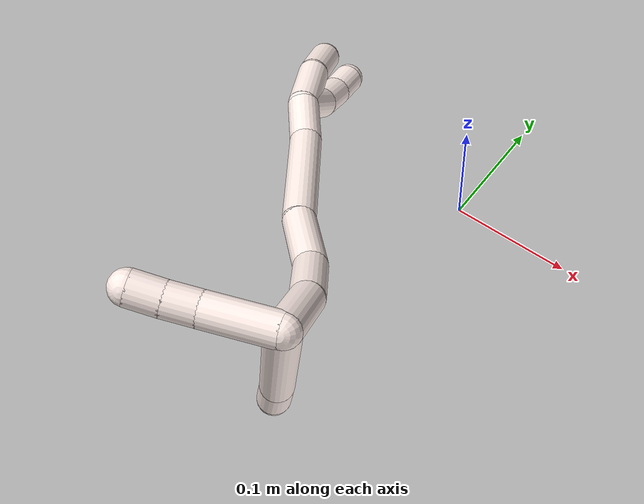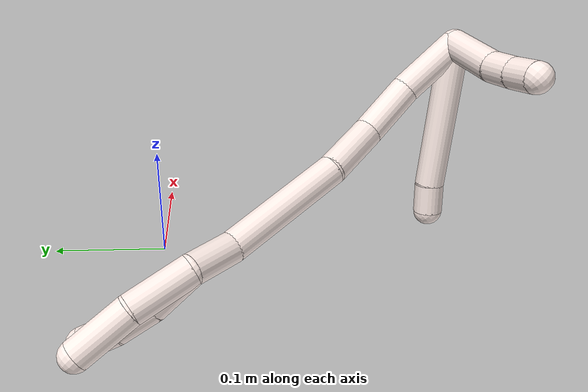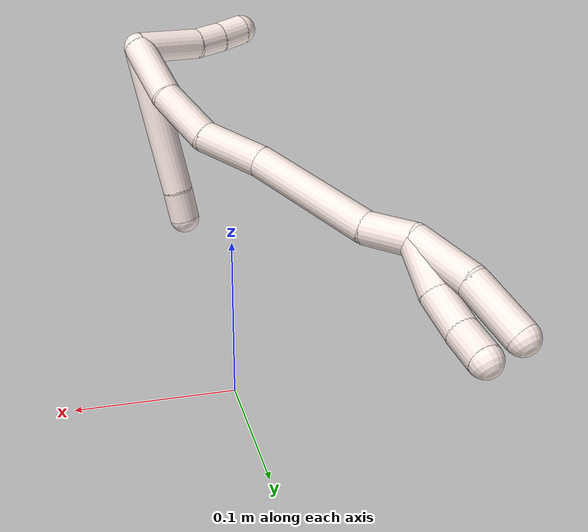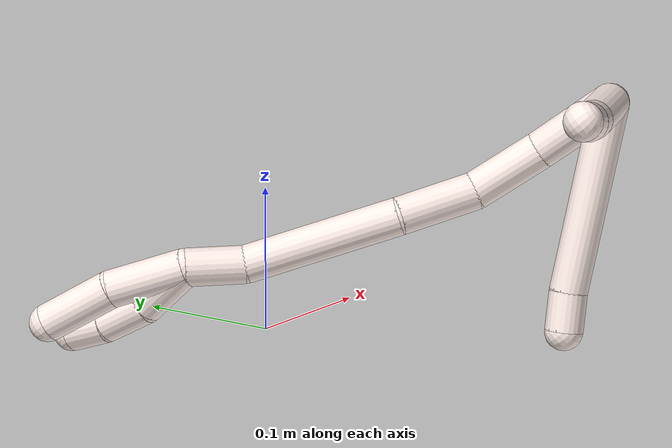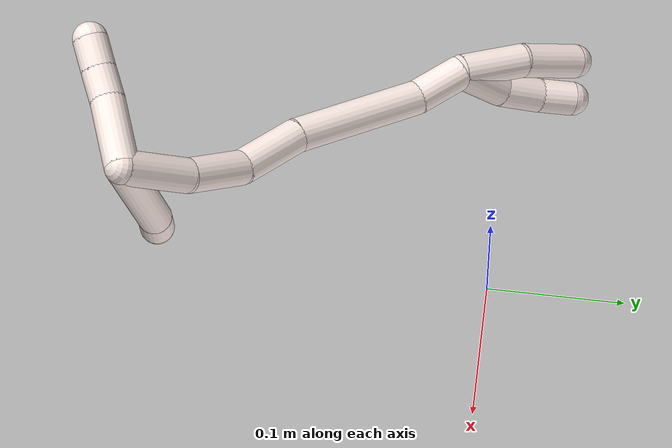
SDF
<sdf version="1.7">
 <world name="default">
  <model name="11">
   <static>0</static>
   <link name="11">
    <collision name="collision-cylinder-e_1_2_8">
     <pose>-0.007183 -0.039432 -0.04749 2.44863 -0.11585 -0.318513</pose>
     <geometry><cylinder><radius>0.0125</radius><length>0.124287</length></cylinder></geometry>
     <surface>
      <friction><ode><mu>1.16</mu><mu2>1.16</mu2><slip1>0</slip1><slip2>0</slip2></ode></friction>
      <contact><ode><kp>1e+06</kp><kd>1</kd><max_vel>0</max_vel><min_depth>0.001</min_depth></ode></contact>
     </surface>
    </collision>
    <visual name="visual-cylinder-e_1_2_8">
     <pose>-0.007183 -0.039432 -0.04749 2.44863 -0.11585 -0.318513</pose>
     <geometry><cylinder><radius>0.0125</radius><length>0.124287</length></cylinder></geometry>
     <material><ambient>1 0.933333 0.909804 1</ambient></material>
    </visual>
    <collision name="collision-cylinder-e_2_8_6">
     <pose>-0.016135 -0.088006 -0.103846 2.34088 -0.137976 -0.323681</pose>
     <geometry><cylinder><radius>0.0125</radius><length>0.025713</length></cylinder></geometry>
     <surface>
      <friction><ode><mu>1.16</mu><mu2>1.16</mu2><slip1>0</slip1><slip2>0</slip2></ode></friction>
      <contact><ode><kp>1e+06</kp><kd>1</kd><max_vel>0</max_vel><min_depth>0.001</min_depth></ode></contact>
     </surface>
    </collision>
    <visual name="visual-cylinder-e_2_8_6">
     <pose>-0.016135 -0.088006 -0.103846 2.34088 -0.137976 -0.323681</pose>
     <geometry><cylinder><radius>0.0125</radius><length>0.025713</length></cylinder></geometry>
     <material><ambient>1 0.933333 0.909804 1</ambient></material>
    </visual>
    <collision name="collision-cylinder-e_1_2_9">
     <pose>-0.026571 -0.001319 -0.000695 2.0558 -1.51474 -2.00556</pose>
     <geometry><cylinder><radius>0.0125</radius><length>0.053226</length></cylinder></geometry>
     <surface>
      <friction><ode><mu>1.16</mu><mu2>1.16</mu2><slip1>0</slip1><slip2>0</slip2></ode></friction>
      <contact><ode><kp>1e+06</kp><kd>1</kd><max_vel>0</max_vel><min_depth>0.001</min_depth></ode></contact>
     </surface>
    </collision>
    <visual name="visual-cylinder-e_1_2_9">
     <pose>-0.026571 -0.001319 -0.000695 2.0558 -1.51474 -2.00556</pose>
     <geometry><cylinder><radius>0.0125</radius><length>0.053226</length></cylinder></geometry>
     <material><ambient>1 0.933333 0.909804 1</ambient></material>
    </visual>
    <collision name="collision-cylinder-e_2_9_10">
     <pose>-0.064785 -0.002391 0.000172 -0.15666 -1.43579 0.136885</pose>
     <geometry><cylinder><radius>0.0125</radius><length>0.0235</length></cylinder></geometry>
     <surface>
      <friction><ode><mu>1.16</mu><mu2>1.16</mu2><slip1>0</slip1><slip2>0</slip2></ode></friction>
      <contact><ode><kp>1e+06</kp><kd>1</kd><max_vel>0</max_vel><min_depth>0.001</min_depth></ode></contact>
     </surface>
    </collision>
    <visual name="visual-cylinder-e_2_9_10">
     <pose>-0.064785 -0.002391 0.000172 -0.15666 -1.43579 0.136885</pose>
     <geometry><cylinder><radius>0.0125</radius><length>0.0235</length></cylinder></geometry>
     <material><ambient>1 0.933333 0.909804 1</ambient></material>
    </visual>
    <collision name="collision-cylinder-e_3_10_5">
     <pose>-0.087872 -0.001243 0.003644 -0.440921 -1.38831 0.368823</pose>
     <geometry><cylinder><radius>0.0125</radius><length>0.023274</length></cylinder></geometry>
     <surface>
      <friction><ode><mu>1.16</mu><mu2>1.16</mu2><slip1>0</slip1><slip2>0</slip2></ode></friction>
      <contact><ode><kp>1e+06</kp><kd>1</kd><max_vel>0</max_vel><min_depth>0.001</min_depth></ode></contact>
     </surface>
    </collision>
    <visual name="visual-cylinder-e_3_10_5">
     <pose>-0.087872 -0.001243 0.003644 -0.440921 -1.38831 0.368823</pose>
     <geometry><cylinder><radius>0.0125</radius><length>0.023274</length></cylinder></geometry>
     <material><ambient>1 0.933333 0.909804 1</ambient></material>
    </visual>
    <collision name="collision-cylinder-e_1_2_11">
     <pose>-0.000243 0.001948 -0.027846 -3.07176 -0.008705 0.247926</pose>
     <geometry><cylinder><radius>0.0125</radius><length>0.055831</length></cylinder></geometry>
     <surface>
      <friction><ode><mu>1.16</mu><mu2>1.16</mu2><slip1>0</slip1><slip2>0</slip2></ode></friction>
      <contact><ode><kp>1e+06</kp><kd>1</kd><max_vel>0</max_vel><min_depth>0.001</min_depth></ode></contact>
     </surface>
    </collision>
    <visual name="visual-cylinder-e_1_2_11">
     <pose>-0.000243 0.001948 -0.027846 -3.07176 -0.008705 0.247926</pose>
     <geometry><cylinder><radius>0.0125</radius><length>0.055831</length></cylinder></geometry>
     <material><ambient>1 0.933333 0.909804 1</ambient></material>
    </visual>
    <collision name="collision-cylinder-e_2_11_12">
     <pose>-0.006296 0.006491 -0.079593 -3.03343 -0.237141 2.28859</pose>
     <geometry><cylinder><radius>0.0125</radius><length>0.049466</length></cylinder></geometry>
     <surface>
      <friction><ode><mu>1.16</mu><mu2>1.16</mu2><slip1>0</slip1><slip2>0</slip2></ode></friction>
      <contact><ode><kp>1e+06</kp><kd>1</kd><max_vel>0</max_vel><min_depth>0.001</min_depth></ode></contact>
     </surface>
    </collision>
    <visual name="visual-cylinder-e_2_11_12">
     <pose>-0.006296 0.006491 -0.079593 -3.03343 -0.237141 2.28859</pose>
     <geometry><cylinder><radius>0.0125</radius><length>0.049466</length></cylinder></geometry>
     <material><ambient>1 0.933333 0.909804 1</ambient></material>
    </visual>
    <collision name="collision-cylinder-e_3_12_13">
     <pose>-0.024156 0.017562 -0.125044 -2.76687 -0.479788 1.82289</pose>
     <geometry><cylinder><radius>0.0125</radius><length>0.052209</length></cylinder></geometry>
     <surface>
      <friction><ode><mu>1.16</mu><mu2>1.16</mu2><slip1>0</slip1><slip2>0</slip2></ode></friction>
      <contact><ode><kp>1e+06</kp><kd>1</kd><max_vel>0</max_vel><min_depth>0.001</min_depth></ode></contact>
     </surface>
    </collision>
    <visual name="visual-cylinder-e_3_12_13">
     <pose>-0.024156 0.017562 -0.125044 -2.76687 -0.479788 1.82289</pose>
     <geometry><cylinder><radius>0.0125</radius><length>0.052209</length></cylinder></geometry>
     <material><ambient>1 0.933333 0.909804 1</ambient></material>
    </visual>
    <collision name="collision-cylinder-e_4_13_14">
     <pose>-0.050405 0.044233 -0.192903 -2.76721 -0.277979 1.27229</pose>
     <geometry><cylinder><radius>0.0125</radius><length>0.103483</length></cylinder></geometry>
     <surface>
      <friction><ode><mu>1.16</mu><mu2>1.16</mu2><slip1>0</slip1><slip2>0</slip2></ode></friction>
      <contact><ode><kp>1e+06</kp><kd>1</kd><max_vel>0</max_vel><min_depth>0.001</min_depth></ode></contact>
     </surface>
    </collision>
    <visual name="visual-cylinder-e_4_13_14">
     <pose>-0.050405 0.044233 -0.192903 -2.76721 -0.277979 1.27229</pose>
     <geometry><cylinder><radius>0.0125</radius><length>0.103483</length></cylinder></geometry>
     <material><ambient>1 0.933333 0.909804 1</ambient></material>
    </visual>
    <collision name="collision-cylinder-e_5_14_1">
     <pose>-0.071977 0.073568 -0.253424 -2.4768 -0.387703 1.03418</pose>
     <geometry><cylinder><radius>0.0125</radius><length>0.03901</length></cylinder></geometry>
     <surface>
      <friction><ode><mu>1.16</mu><mu2>1.16</mu2><slip1>0</slip1><slip2>0</slip2></ode></friction>
      <contact><ode><kp>1e+06</kp><kd>1</kd><max_vel>0</max_vel><min_depth>0.001</min_depth></ode></contact>
     </surface>
    </collision>
    <visual name="visual-cylinder-e_5_14_1">
     <pose>-0.071977 0.073568 -0.253424 -2.4768 -0.387703 1.03418</pose>
     <geometry><cylinder><radius>0.0125</radius><length>0.03901</length></cylinder></geometry>
     <material><ambient>1 0.933333 0.909804 1</ambient></material>
    </visual>
    <collision name="collision-cylinder-e_1_1_15">
     <pose>-0.076318 0.08355 -0.287939 3.08465 0.148081 2.40838</pose>
     <geometry><cylinder><radius>0.0125</radius><length>0.041122</length></cylinder></geometry>
     <surface>
      <friction><ode><mu>1.16</mu><mu2>1.16</mu2><slip1>0</slip1><slip2>0</slip2></ode></friction>
      <contact><ode><kp>1e+06</kp><kd>1</kd><max_vel>0</max_vel><min_depth>0.001</min_depth></ode></contact>
     </surface>
    </collision>
    <visual name="visual-cylinder-e_1_1_15">
     <pose>-0.076318 0.08355 -0.287939 3.08465 0.148081 2.40838</pose>
     <geometry><cylinder><radius>0.0125</radius><length>0.041122</length></cylinder></geometry>
     <material><ambient>1 0.933333 0.909804 1</ambient></material>
    </visual>
    <collision name="collision-cylinder-e_2_15_16">
     <pose>-0.071846 0.085818 -0.324053 -2.92826 0.088679 -0.785671</pose>
     <geometry><cylinder><radius>0.0125</radius><length>0.032483</length></cylinder></geometry>
     <surface>
      <friction><ode><mu>1.16</mu><mu2>1.16</mu2><slip1>0</slip1><slip2>0</slip2></ode></friction>
      <contact><ode><kp>1e+06</kp><kd>1</kd><max_vel>0</max_vel><min_depth>0.001</min_depth></ode></contact>
     </surface>
    </collision>
    <visual name="visual-cylinder-e_2_15_16">
     <pose>-0.071846 0.085818 -0.324053 -2.92826 0.088679 -0.785671</pose>
     <geometry><cylinder><radius>0.0125</radius><length>0.032483</length></cylinder></geometry>
     <material><ambient>1 0.933333 0.909804 1</ambient></material>
    </visual>
    <collision name="collision-cylinder-e_3_16_4">
     <pose>-0.068656 0.09419 -0.351973 -2.75377 0.133134 -0.654524</pose>
     <geometry><cylinder><radius>0.0125</radius><length>0.026395</length></cylinder></geometry>
     <surface>
      <friction><ode><mu>1.16</mu><mu2>1.16</mu2><slip1>0</slip1><slip2>0</slip2></ode></friction>
      <contact><ode><kp>1e+06</kp><kd>1</kd><max_vel>0</max_vel><min_depth>0.001</min_depth></ode></contact>
     </surface>
    </collision>
    <visual name="visual-cylinder-e_3_16_4">
     <pose>-0.068656 0.09419 -0.351973 -2.75377 0.133134 -0.654524</pose>
     <geometry><cylinder><radius>0.0125</radius><length>0.026395</length></cylinder></geometry>
     <material><ambient>1 0.933333 0.909804 1</ambient></material>
    </visual>
    <collision name="collision-cylinder-e_1_1_17">
     <pose>-0.083455 0.094145 -0.291136 -2.75973 -0.160633 0.789184</pose>
     <geometry><cylinder><radius>0.0125</radius><length>0.051307</length></cylinder></geometry>
     <surface>
      <friction><ode><mu>1.16</mu><mu2>1.16</mu2><slip1>0</slip1><slip2>0</slip2></ode></friction>
      <contact><ode><kp>1e+06</kp><kd>1</kd><max_vel>0</max_vel><min_depth>0.001</min_depth></ode></contact>
     </surface>
    </collision>
    <visual name="visual-cylinder-e_1_1_17">
     <pose>-0.083455 0.094145 -0.291136 -2.75973 -0.160633 0.789184</pose>
     <geometry><cylinder><radius>0.0125</radius><length>0.051307</length></cylinder></geometry>
     <material><ambient>1 0.933333 0.909804 1</ambient></material>
    </visual>
    <collision name="collision-cylinder-e_2_17_3">
     <pose>-0.089439 0.107865 -0.338528 -2.96418 -0.077337 0.820605</pose>
     <geometry><cylinder><radius>0.0125</radius><length>0.048693</length></cylinder></geometry>
     <surface>
      <friction><ode><mu>1.16</mu><mu2>1.16</mu2><slip1>0</slip1><slip2>0</slip2></ode></friction>
      <contact><ode><kp>1e+06</kp><kd>1</kd><max_vel>0</max_vel><min_depth>0.001</min_depth></ode></contact>
     </surface>
    </collision>
    <visual name="visual-cylinder-e_2_17_3">
     <pose>-0.089439 0.107865 -0.338528 -2.96418 -0.077337 0.820605</pose>
     <geometry><cylinder><radius>0.0125</radius><length>0.048693</length></cylinder></geometry>
     <material><ambient>1 0.933333 0.909804 1</ambient></material>
    </visual>
    <collision name="collision-sphere-3">
     <pose>-0.09132 0.112149 -0.36242 0 -0 0</pose>
     <geometry><sphere><radius>0.0125</radius></sphere></geometry>
     <surface>
      <friction><ode><mu>1.16</mu><mu2>1.16</mu2><slip1>0</slip1><slip2>0</slip2></ode></friction>
      <contact><ode><kp>1e+06</kp><kd>1</kd><max_vel>0</max_vel><min_depth>0.001</min_depth></ode></contact>
     </surface>
    </collision>
    <visual name="visual-sphere-3">
     <pose>-0.09132 0.112149 -0.36242 0 -0 0</pose>
     <geometry><sphere><radius>0.0125</radius></sphere></geometry>
     <material><ambient>1 0.933333 0.909804 1</ambient></material>
    </visual>
    <collision name="collision-sphere-17">
     <pose>-0.087558 0.103581 -0.314635 0 -0 0</pose>
     <geometry><sphere><radius>0.0125</radius></sphere></geometry>
     <surface>
      <friction><ode><mu>1.16</mu><mu2>1.16</mu2><slip1>0</slip1><slip2>0</slip2></ode></friction>
      <contact><ode><kp>1e+06</kp><kd>1</kd><max_vel>0</max_vel><min_depth>0.001</min_depth></ode></contact>
     </surface>
    </collision>
    <visual name="visual-sphere-17">
     <pose>-0.087558 0.103581 -0.314635 0 -0 0</pose>
     <geometry><sphere><radius>0.0125</radius></sphere></geometry>
     <material><ambient>1 0.933333 0.909804 1</ambient></material>
    </visual>
    <collision name="collision-sphere-4">
     <pose>-0.066904 0.099137 -0.364083 0 -0 0</pose>
     <geometry><sphere><radius>0.0125</radius></sphere></geometry>
     <surface>
      <friction><ode><mu>1.16</mu><mu2>1.16</mu2><slip1>0</slip1><slip2>0</slip2></ode></friction>
      <contact><ode><kp>1e+06</kp><kd>1</kd><max_vel>0</max_vel><min_depth>0.001</min_depth></ode></contact>
     </surface>
    </collision>
    <visual name="visual-sphere-4">
     <pose>-0.066904 0.099137 -0.364083 0 -0 0</pose>
     <geometry><sphere><radius>0.0125</radius></sphere></geometry>
     <material><ambient>1 0.933333 0.909804 1</ambient></material>
    </visual>
    <collision name="collision-sphere-16">
     <pose>-0.070408 0.089243 -0.339864 0 -0 0</pose>
     <geometry><sphere><radius>0.0125</radius></sphere></geometry>
     <surface>
      <friction><ode><mu>1.16</mu><mu2>1.16</mu2><slip1>0</slip1><slip2>0</slip2></ode></friction>
      <contact><ode><kp>1e+06</kp><kd>1</kd><max_vel>0</max_vel><min_depth>0.001</min_depth></ode></contact>
     </surface>
    </collision>
    <visual name="visual-sphere-16">
     <pose>-0.070408 0.089243 -0.339864 0 -0 0</pose>
     <geometry><sphere><radius>0.0125</radius></sphere></geometry>
     <material><ambient>1 0.933333 0.909804 1</ambient></material>
    </visual>
    <collision name="collision-sphere-15">
     <pose>-0.073285 0.082393 -0.308242 0 -0 0</pose>
     <geometry><sphere><radius>0.0125</radius></sphere></geometry>
     <surface>
      <friction><ode><mu>1.16</mu><mu2>1.16</mu2><slip1>0</slip1><slip2>0</slip2></ode></friction>
      <contact><ode><kp>1e+06</kp><kd>1</kd><max_vel>0</max_vel><min_depth>0.001</min_depth></ode></contact>
     </surface>
    </collision>
    <visual name="visual-sphere-15">
     <pose>-0.073285 0.082393 -0.308242 0 -0 0</pose>
     <geometry><sphere><radius>0.0125</radius></sphere></geometry>
     <material><ambient>1 0.933333 0.909804 1</ambient></material>
    </visual>
    <collision name="collision-sphere-1">
     <pose>-0.079352 0.084708 -0.267636 0 -0 0</pose>
     <geometry><sphere><radius>0.0125</radius></sphere></geometry>
     <surface>
      <friction><ode><mu>1.16</mu><mu2>1.16</mu2><slip1>0</slip1><slip2>0</slip2></ode></friction>
      <contact><ode><kp>1e+06</kp><kd>1</kd><max_vel>0</max_vel><min_depth>0.001</min_depth></ode></contact>
     </surface>
    </collision>
    <visual name="visual-sphere-1">
     <pose>-0.079352 0.084708 -0.267636 0 -0 0</pose>
     <geometry><sphere><radius>0.0125</radius></sphere></geometry>
     <material><ambient>1 0.933333 0.909804 1</ambient></material>
    </visual>
    <collision name="collision-sphere-14">
     <pose>-0.064603 0.062429 -0.239212 0 -0 0</pose>
     <geometry><sphere><radius>0.0125</radius></sphere></geometry>
     <surface>
      <friction><ode><mu>1.16</mu><mu2>1.16</mu2><slip1>0</slip1><slip2>0</slip2></ode></friction>
      <contact><ode><kp>1e+06</kp><kd>1</kd><max_vel>0</max_vel><min_depth>0.001</min_depth></ode></contact>
     </surface>
    </collision>
    <visual name="visual-sphere-14">
     <pose>-0.064603 0.062429 -0.239212 0 -0 0</pose>
     <geometry><sphere><radius>0.0125</radius></sphere></geometry>
     <material><ambient>1 0.933333 0.909804 1</ambient></material>
    </visual>
    <collision name="collision-sphere-13">
     <pose>-0.036206 0.026038 -0.146594 0 -0 0</pose>
     <geometry><sphere><radius>0.0125</radius></sphere></geometry>
     <surface>
      <friction><ode><mu>1.16</mu><mu2>1.16</mu2><slip1>0</slip1><slip2>0</slip2></ode></friction>
      <contact><ode><kp>1e+06</kp><kd>1</kd><max_vel>0</max_vel><min_depth>0.001</min_depth></ode></contact>
     </surface>
    </collision>
    <visual name="visual-sphere-13">
     <pose>-0.036206 0.026038 -0.146594 0 -0 0</pose>
     <geometry><sphere><radius>0.0125</radius></sphere></geometry>
     <material><ambient>1 0.933333 0.909804 1</ambient></material>
    </visual>
    <collision name="collision-sphere-12">
     <pose>-0.012107 0.009086 -0.103494 0 -0 0</pose>
     <geometry><sphere><radius>0.0125</radius></sphere></geometry>
     <surface>
      <friction><ode><mu>1.16</mu><mu2>1.16</mu2><slip1>0</slip1><slip2>0</slip2></ode></friction>
      <contact><ode><kp>1e+06</kp><kd>1</kd><max_vel>0</max_vel><min_depth>0.001</min_depth></ode></contact>
     </surface>
    </collision>
    <visual name="visual-sphere-12">
     <pose>-0.012107 0.009086 -0.103494 0 -0 0</pose>
     <geometry><sphere><radius>0.0125</radius></sphere></geometry>
     <material><ambient>1 0.933333 0.909804 1</ambient></material>
    </visual>
    <collision name="collision-sphere-11">
     <pose>-0.000486 0.003896 -0.055693 0 -0 0</pose>
     <geometry><sphere><radius>0.0125</radius></sphere></geometry>
     <surface>
      <friction><ode><mu>1.16</mu><mu2>1.16</mu2><slip1>0</slip1><slip2>0</slip2></ode></friction>
      <contact><ode><kp>1e+06</kp><kd>1</kd><max_vel>0</max_vel><min_depth>0.001</min_depth></ode></contact>
     </surface>
    </collision>
    <visual name="visual-sphere-11">
     <pose>-0.000486 0.003896 -0.055693 0 -0 0</pose>
     <geometry><sphere><radius>0.0125</radius></sphere></geometry>
     <material><ambient>1 0.933333 0.909804 1</ambient></material>
    </visual>
    <collision name="collision-sphere-8">
     <pose>-0.014366 -0.078864 -0.09498 0 -0 0</pose>
     <geometry><sphere><radius>0.0125</radius></sphere></geometry>
     <surface>
      <friction><ode><mu>1.16</mu><mu2>1.16</mu2><slip1>0</slip1><slip2>0</slip2></ode></friction>
      <contact><ode><kp>1e+06</kp><kd>1</kd><max_vel>0</max_vel><min_depth>0.001</min_depth></ode></contact>
     </surface>
    </collision>
    <visual name="visual-sphere-8">
     <pose>-0.014366 -0.078864 -0.09498 0 -0 0</pose>
     <geometry><sphere><radius>0.0125</radius></sphere></geometry>
     <material><ambient>1 0.933333 0.909804 1</ambient></material>
    </visual>
    <collision name="collision-sphere-2">
     <geometry><sphere><radius>0.0125</radius></sphere></geometry>
     <surface>
      <friction><ode><mu>1.16</mu><mu2>1.16</mu2><slip1>0</slip1><slip2>0</slip2></ode></friction>
      <contact><ode><kp>1e+06</kp><kd>1</kd><max_vel>0</max_vel><min_depth>0.001</min_depth></ode></contact>
     </surface>
    </collision>
    <visual name="visual-sphere-2">
     <geometry><sphere><radius>0.0125</radius></sphere></geometry>
     <material><ambient>1 0.933333 0.909804 1</ambient></material>
    </visual>
    <collision name="collision-sphere-9">
     <pose>-0.053142 -0.002638 -0.00139 0 -0 0</pose>
     <geometry><sphere><radius>0.0125</radius></sphere></geometry>
     <surface>
      <friction><ode><mu>1.16</mu><mu2>1.16</mu2><slip1>0</slip1><slip2>0</slip2></ode></friction>
      <contact><ode><kp>1e+06</kp><kd>1</kd><max_vel>0</max_vel><min_depth>0.001</min_depth></ode></contact>
     </surface>
    </collision>
    <visual name="visual-sphere-9">
     <pose>-0.053142 -0.002638 -0.00139 0 -0 0</pose>
     <geometry><sphere><radius>0.0125</radius></sphere></geometry>
     <material><ambient>1 0.933333 0.909804 1</ambient></material>
    </visual>
    <collision name="collision-sphere-6">
     <pose>-0.017903 -0.097147 -0.112711 0 -0 0</pose>
     <geometry><sphere><radius>0.0125</radius></sphere></geometry>
     <surface>
      <friction><ode><mu>1.16</mu><mu2>1.16</mu2><slip1>0</slip1><slip2>0</slip2></ode></friction>
      <contact><ode><kp>1e+06</kp><kd>1</kd><max_vel>0</max_vel><min_depth>0.001</min_depth></ode></contact>
     </surface>
    </collision>
    <visual name="visual-sphere-6">
     <pose>-0.017903 -0.097147 -0.112711 0 -0 0</pose>
     <geometry><sphere><radius>0.0125</radius></sphere></geometry>
     <material><ambient>1 0.933333 0.909804 1</ambient></material>
    </visual>
    <collision name="collision-sphere-10">
     <pose>-0.076428 -0.002145 0.001734 0 -0 0</pose>
     <geometry><sphere><radius>0.0125</radius></sphere></geometry>
     <surface>
      <friction><ode><mu>1.16</mu><mu2>1.16</mu2><slip1>0</slip1><slip2>0</slip2></ode></friction>
      <contact><ode><kp>1e+06</kp><kd>1</kd><max_vel>0</max_vel><min_depth>0.001</min_depth></ode></contact>
     </surface>
    </collision>
    <visual name="visual-sphere-10">
     <pose>-0.076428 -0.002145 0.001734 0 -0 0</pose>
     <geometry><sphere><radius>0.0125</radius></sphere></geometry>
     <material><ambient>1 0.933333 0.909804 1</ambient></material>
    </visual>
    <collision name="collision-sphere-5">
     <pose>-0.099316 -0.000342 0.005554 0 -0 0</pose>
     <geometry><sphere><radius>0.0125</radius></sphere></geometry>
     <surface>
      <friction><ode><mu>1.16</mu><mu2>1.16</mu2><slip1>0</slip1><slip2>0</slip2></ode></friction>
      <contact><ode><kp>1e+06</kp><kd>1</kd><max_vel>0</max_vel><min_depth>0.001</min_depth></ode></contact>
     </surface>
    </collision>
    <visual name="visual-sphere-5">
     <pose>-0.099316 -0.000342 0.005554 0 -0 0</pose>
     <geometry><sphere><radius>0.0125</radius></sphere></geometry>
     <material><ambient>1 0.933333 0.909804 1</ambient></material>
    </visual>
    <inertial>
     <pose>-0.042428 0.027023 -0.151291 0 -0 0</pose>
     <mass>0.75</mass>
     <inertia>
      <ixx>0.000279</ixx>
      <ixy>0</ixy>
      <ixz>0</ixz>
      <iyy>-4.9e-05</iyy>
      <iyz>0</iyz>
      <izz>8.7e-05</izz>
     </inertia>
    </inertial>
   </link>
   <pose>0.027882 -0.252909 0.184956 0.858357 0.047284 0.321242</pose>
  </model>
 </world>
</sdf>
